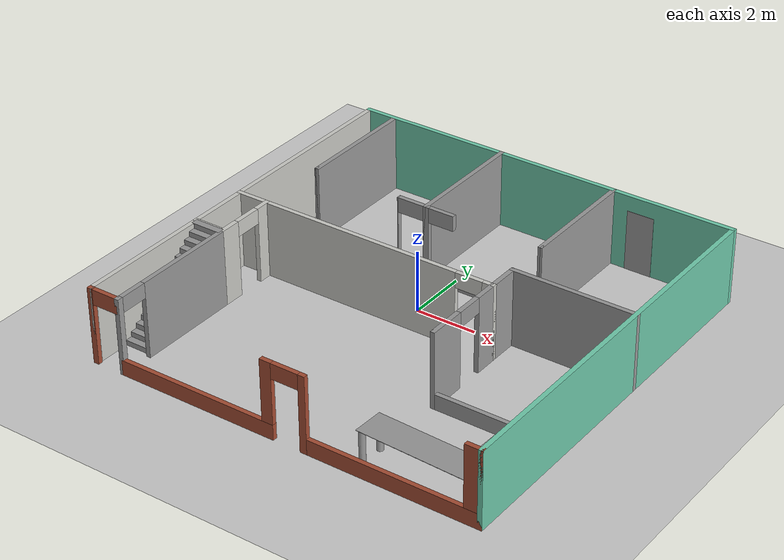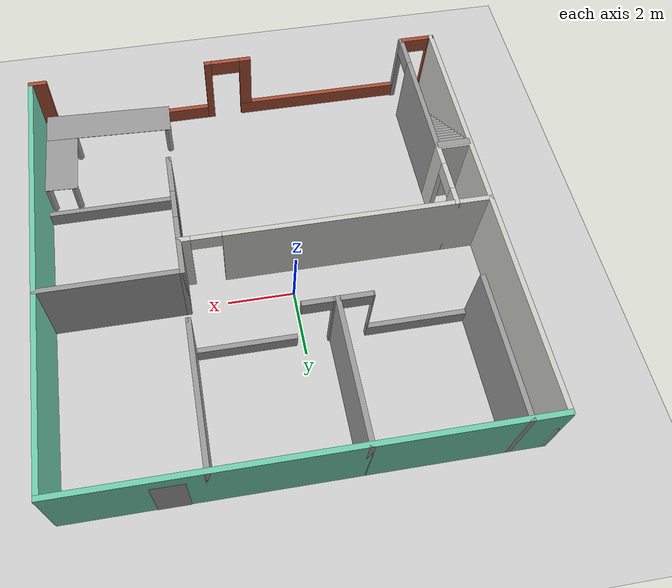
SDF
<sdf version="1.6">
 <world name="default">
  <model name="ground_plane">
   <static>1</static>
   <link name="link">
    <collision name="collision">
     <geometry><plane><normal>0 0 1</normal><size>100 100</size></plane></geometry>
     <surface>
      <contact><collide_bitmask>65535</collide_bitmask></contact>
      <friction><ode><mu>100</mu><mu2>50</mu2></ode></friction>
     </surface>
    </collision>
    <visual name="visual">
     <cast_shadows>0</cast_shadows>
     <geometry><plane><normal>0 0 1</normal><size>100 100</size></plane></geometry>
     <material>
      <script><uri>file://media/materials/scripts/gazebo.material</uri><name>Gazebo/Grey</name></script>
     </material>
    </visual>
   </link>
  </model>
  <model name="HB_greenLabs">
   <pose>0.67281 -0.88547 0 0 -0 0</pose>
   <link name="Door_8">
    <collision name="Door_8_Collision">
     <geometry><box><size>0.9 0.17 2</size></box></geometry>
     <pose>0 0 1 0 -0 0</pose>
    </collision>
    <visual name="Door_8_Visual">
     <pose>0 0 1 0 -0 0</pose>
     <geometry><box><size>0.9 0.17 2</size></box></geometry>
     <material>
      <script><uri>file://media/materials/scripts/gazebo.material</uri><name>Gazebo/Grey</name></script>
     </material>
    </visual>
    <pose>3.5 6.5 0 0 -0 0</pose>
   </link>
   <link name="Stairs_0">
    <visual name="Stairs_0_Visual_0">
     <pose>-6 -5.26467 0.083333 0 -0 -3.14159</pose>
     <geometry><box><size>1 0.226667 0.166667</size></box></geometry>
     <material>
      <script><uri>file://media/materials/scripts/gazebo.material</uri><name>Gazebo/Grey</name></script>
      <ambient>1 1 1 1</ambient>
     </material>
     <meta><layer>0</layer></meta>
    </visual>
    <collision name="Stairs_0_Collision_0">
     <geometry><box><size>1 0.226667 0.166667</size></box></geometry>
     <pose>-6 -5.26467 0.083333 0 -0 -3.14159</pose>
    </collision>
    <visual name="Stairs_0_Visual_1">
     <pose>-6 -5.038 0.25 0 -0 -3.14159</pose>
     <geometry><box><size>1 0.226667 0.166667</size></box></geometry>
     <material>
      <script><uri>file://media/materials/scripts/gazebo.material</uri><name>Gazebo/Grey</name></script>
      <ambient>1 1 1 1</ambient>
     </material>
     <meta><layer>0</layer></meta>
    </visual>
    <collision name="Stairs_0_Collision_1">
     <geometry><box><size>1 0.226667 0.166667</size></box></geometry>
     <pose>-6 -5.038 0.25 0 -0 -3.14159</pose>
    </collision>
    <visual name="Stairs_0_Visual_2">
     <pose>-6 -4.81133 0.416667 0 -0 -3.14159</pose>
     <geometry><box><size>1 0.226667 0.166667</size></box></geometry>
     <material>
      <script><uri>file://media/materials/scripts/gazebo.material</uri><name>Gazebo/Grey</name></script>
      <ambient>1 1 1 1</ambient>
     </material>
     <meta><layer>0</layer></meta>
    </visual>
    <collision name="Stairs_0_Collision_2">
     <geometry><box><size>1 0.226667 0.166667</size></box></geometry>
     <pose>-6 -4.81133 0.416667 0 -0 -3.14159</pose>
    </collision>
    <visual name="Stairs_0_Visual_3">
     <pose>-6 -4.58467 0.583333 0 -0 -3.14159</pose>
     <geometry><box><size>1 0.226667 0.166667</size></box></geometry>
     <material>
      <script><uri>file://media/materials/scripts/gazebo.material</uri><name>Gazebo/Grey</name></script>
      <ambient>1 1 1 1</ambient>
     </material>
     <meta><layer>0</layer></meta>
    </visual>
    <collision name="Stairs_0_Collision_3">
     <geometry><box><size>1 0.226667 0.166667</size></box></geometry>
     <pose>-6 -4.58467 0.583333 0 -0 -3.14159</pose>
    </collision>
    <visual name="Stairs_0_Visual_4">
     <pose>-6 -4.358 0.75 0 -0 -3.14159</pose>
     <geometry><box><size>1 0.226667 0.166667</size></box></geometry>
     <material>
      <script><uri>file://media/materials/scripts/gazebo.material</uri><name>Gazebo/Grey</name></script>
      <ambient>1 1 1 1</ambient>
     </material>
     <meta><layer>0</layer></meta>
    </visual>
    <collision name="Stairs_0_Collision_4">
     <geometry><box><size>1 0.226667 0.166667</size></box></geometry>
     <pose>-6 -4.358 0.75 0 -0 -3.14159</pose>
    </collision>
    <visual name="Stairs_0_Visual_5">
     <pose>-6 -4.13133 0.916667 0 -0 -3.14159</pose>
     <geometry><box><size>1 0.226667 0.166667</size></box></geometry>
     <material>
      <script><uri>file://media/materials/scripts/gazebo.material</uri><name>Gazebo/Grey</name></script>
      <ambient>1 1 1 1</ambient>
     </material>
     <meta><layer>0</layer></meta>
    </visual>
    <collision name="Stairs_0_Collision_5">
     <geometry><box><size>1 0.226667 0.166667</size></box></geometry>
     <pose>-6 -4.13133 0.916667 0 -0 -3.14159</pose>
    </collision>
    <visual name="Stairs_0_Visual_6">
     <pose>-6 -3.90467 1.08333 0 -0 -3.14159</pose>
     <geometry><box><size>1 0.226667 0.166667</size></box></geometry>
     <material>
      <script><uri>file://media/materials/scripts/gazebo.material</uri><name>Gazebo/Grey</name></script>
      <ambient>1 1 1 1</ambient>
     </material>
     <meta><layer>0</layer></meta>
    </visual>
    <collision name="Stairs_0_Collision_6">
     <geometry><box><size>1 0.226667 0.166667</size></box></geometry>
     <pose>-6 -3.90467 1.08333 0 -0 -3.14159</pose>
    </collision>
    <visual name="Stairs_0_Visual_7">
     <pose>-6 -3.678 1.25 0 -0 -3.14159</pose>
     <geometry><box><size>1 0.226667 0.166667</size></box></geometry>
     <material>
      <script><uri>file://media/materials/scripts/gazebo.material</uri><name>Gazebo/Grey</name></script>
      <ambient>1 1 1 1</ambient>
     </material>
     <meta><layer>0</layer></meta>
    </visual>
    <collision name="Stairs_0_Collision_7">
     <geometry><box><size>1 0.226667 0.166667</size></box></geometry>
     <pose>-6 -3.678 1.25 0 -0 -3.14159</pose>
    </collision>
    <visual name="Stairs_0_Visual_8">
     <pose>-6 -3.45133 1.41667 0 -0 -3.14159</pose>
     <geometry><box><size>1 0.226667 0.166667</size></box></geometry>
     <material>
      <script><uri>file://media/materials/scripts/gazebo.material</uri><name>Gazebo/Grey</name></script>
      <ambient>1 1 1 1</ambient>
     </material>
     <meta><layer>0</layer></meta>
    </visual>
    <collision name="Stairs_0_Collision_8">
     <geometry><box><size>1 0.226667 0.166667</size></box></geometry>
     <pose>-6 -3.45133 1.41667 0 -0 -3.14159</pose>
    </collision>
    <visual name="Stairs_0_Visual_9">
     <pose>-6 -3.22467 1.58333 0 -0 -3.14159</pose>
     <geometry><box><size>1 0.226667 0.166667</size></box></geometry>
     <material>
      <script><uri>file://media/materials/scripts/gazebo.material</uri><name>Gazebo/Grey</name></script>
      <ambient>1 1 1 1</ambient>
     </material>
     <meta><layer>0</layer></meta>
    </visual>
    <collision name="Stairs_0_Collision_9">
     <geometry><box><size>1 0.226667 0.166667</size></box></geometry>
     <pose>-6 -3.22467 1.58333 0 -0 -3.14159</pose>
    </collision>
    <visual name="Stairs_0_Visual_10">
     <pose>-6 -2.998 1.75 0 -0 -3.14159</pose>
     <geometry><box><size>1 0.226667 0.166667</size></box></geometry>
     <material>
      <script><uri>file://media/materials/scripts/gazebo.material</uri><name>Gazebo/Grey</name></script>
      <ambient>1 1 1 1</ambient>
     </material>
     <meta><layer>0</layer></meta>
    </visual>
    <collision name="Stairs_0_Collision_10">
     <geometry><box><size>1 0.226667 0.166667</size></box></geometry>
     <pose>-6 -2.998 1.75 0 -0 -3.14159</pose>
    </collision>
    <visual name="Stairs_0_Visual_11">
     <pose>-6 -2.77133 1.91667 0 -0 -3.14159</pose>
     <geometry><box><size>1 0.226667 0.166667</size></box></geometry>
     <material>
      <script><uri>file://media/materials/scripts/gazebo.material</uri><name>Gazebo/Grey</name></script>
      <ambient>1 1 1 1</ambient>
     </material>
     <meta><layer>0</layer></meta>
    </visual>
    <collision name="Stairs_0_Collision_11">
     <geometry><box><size>1 0.226667 0.166667</size></box></geometry>
     <pose>-6 -2.77133 1.91667 0 -0 -3.14159</pose>
    </collision>
    <visual name="Stairs_0_Visual_12">
     <pose>-6 -2.54467 2.08333 0 -0 -3.14159</pose>
     <geometry><box><size>1 0.226667 0.166667</size></box></geometry>
     <material>
      <script><uri>file://media/materials/scripts/gazebo.material</uri><name>Gazebo/Grey</name></script>
      <ambient>1 1 1 1</ambient>
     </material>
     <meta><layer>0</layer></meta>
    </visual>
    <collision name="Stairs_0_Collision_12">
     <geometry><box><size>1 0.226667 0.166667</size></box></geometry>
     <pose>-6 -2.54467 2.08333 0 -0 -3.14159</pose>
    </collision>
    <visual name="Stairs_0_Visual_13">
     <pose>-6 -2.318 2.25 0 -0 -3.14159</pose>
     <geometry><box><size>1 0.226667 0.166667</size></box></geometry>
     <material>
      <script><uri>file://media/materials/scripts/gazebo.material</uri><name>Gazebo/Grey</name></script>
      <ambient>1 1 1 1</ambient>
     </material>
     <meta><layer>0</layer></meta>
    </visual>
    <collision name="Stairs_0_Collision_13">
     <geometry><box><size>1 0.226667 0.166667</size></box></geometry>
     <pose>-6 -2.318 2.25 0 -0 -3.14159</pose>
    </collision>
    <visual name="Stairs_0_Visual_14">
     <pose>-6 -2.09133 2.41667 0 -0 -3.14159</pose>
     <geometry><box><size>1 0.226667 0.166667</size></box></geometry>
     <material>
      <script><uri>file://media/materials/scripts/gazebo.material</uri><name>Gazebo/Grey</name></script>
      <ambient>1 1 1 1</ambient>
     </material>
     <meta><layer>0</layer></meta>
    </visual>
    <collision name="Stairs_0_Collision_14">
     <geometry><box><size>1 0.226667 0.166667</size></box></geometry>
     <pose>-6 -2.09133 2.41667 0 -0 -3.14159</pose>
    </collision>
   </link>
   <link name="Wall_11">
    <pose>0 -6.5 0 0 -0 0</pose>
    <visual name="Wall_11_Visual_0">
     <pose>-6.48238 0 1.25 0 -0 0</pose>
     <geometry><box><size>0.185236 0.15 2.5</size></box></geometry>
     <material>
      <script><uri>file://media/materials/scripts/gazebo.material</uri><name>Gazebo/Bricks</name></script>
      <ambient>1 1 1 1</ambient>
     </material>
     <meta><layer>0</layer></meta>
    </visual>
    <collision name="Wall_11_Collision_0">
     <geometry><box><size>0.185236 0.15 2.5</size></box></geometry>
     <pose>-6.48238 0 1.25 0 -0 0</pose>
    </collision>
    <visual name="Wall_11_Visual_1">
     <pose>-2.80803 0 0.25 0 -0 0</pose>
     <geometry><box><size>5.36346 0.15 0.5</size></box></geometry>
     <material>
      <script><uri>file://media/materials/scripts/gazebo.material</uri><name>Gazebo/Bricks</name></script>
      <ambient>1 1 1 1</ambient>
     </material>
     <meta><layer>0</layer></meta>
    </visual>
    <collision name="Wall_11_Collision_1">
     <geometry><box><size>5.36346 0.15 0.5</size></box></geometry>
     <pose>-2.80803 0 0.25 0 -0 0</pose>
    </collision>
    <visual name="Wall_11_Visual_2">
     <pose>0.88685 0 1.25 0 -0 0</pose>
     <geometry><box><size>0.226301 0.15 2.5</size></box></geometry>
     <material>
      <script><uri>file://media/materials/scripts/gazebo.material</uri><name>Gazebo/Bricks</name></script>
      <ambient>1 1 1 1</ambient>
     </material>
     <meta><layer>0</layer></meta>
    </visual>
    <collision name="Wall_11_Collision_2">
     <geometry><box><size>0.226301 0.15 2.5</size></box></geometry>
     <pose>0.88685 0 1.25 0 -0 0</pose>
    </collision>
    <visual name="Wall_11_Visual_3">
     <pose>3.7875 0 0.25 0 -0 0</pose>
     <geometry><box><size>5.575 0.15 0.5</size></box></geometry>
     <material>
      <script><uri>file://media/materials/scripts/gazebo.material</uri><name>Gazebo/Bricks</name></script>
      <ambient>1 1 1 1</ambient>
     </material>
     <meta><layer>0</layer></meta>
    </visual>
    <collision name="Wall_11_Collision_3">
     <geometry><box><size>5.575 0.15 0.5</size></box></geometry>
     <pose>3.7875 0 0.25 0 -0 0</pose>
    </collision>
    <visual name="Wall_11_Visual_4">
     <pose>-0.31315 0 1.5 0 -0 0</pose>
     <geometry><box><size>0.373699 0.15 2</size></box></geometry>
     <material>
      <script><uri>file://media/materials/scripts/gazebo.material</uri><name>Gazebo/Bricks</name></script>
      <ambient>1 1 1 1</ambient>
     </material>
     <meta><layer>0</layer></meta>
    </visual>
    <collision name="Wall_11_Collision_4">
     <geometry><box><size>0.373699 0.15 2</size></box></geometry>
     <pose>-0.31315 0 1.5 0 -0 0</pose>
    </collision>
    <visual name="Wall_11_Visual_5">
     <pose>-0.31315 0 1.5 0 -0 0</pose>
     <geometry><box><size>0.373699 0.15 2</size></box></geometry>
     <material>
      <script><uri>file://media/materials/scripts/gazebo.material</uri><name>Gazebo/Bricks</name></script>
      <ambient>1 1 1 1</ambient>
     </material>
     <meta><layer>0</layer></meta>
    </visual>
    <collision name="Wall_11_Collision_5">
     <geometry><box><size>0.373699 0.15 2</size></box></geometry>
     <pose>-0.31315 0 1.5 0 -0 0</pose>
    </collision>
    <visual name="Wall_11_Visual_6">
     <pose>6.2875 0 1.5 0 -0 0</pose>
     <geometry><box><size>0.575 0.15 2</size></box></geometry>
     <material>
      <script><uri>file://media/materials/scripts/gazebo.material</uri><name>Gazebo/Bricks</name></script>
      <ambient>1 1 1 1</ambient>
     </material>
     <meta><layer>0</layer></meta>
    </visual>
    <collision name="Wall_11_Collision_6">
     <geometry><box><size>0.575 0.15 2</size></box></geometry>
     <pose>6.2875 0 1.5 0 -0 0</pose>
    </collision>
    <visual name="Wall_11_Visual_7">
     <pose>-5.94488 0 2.25 0 -0 0</pose>
     <geometry><box><size>0.889764 0.15 0.5</size></box></geometry>
     <material>
      <script><uri>file://media/materials/scripts/gazebo.material</uri><name>Gazebo/Bricks</name></script>
      <ambient>1 1 1 1</ambient>
     </material>
     <meta><layer>0</layer></meta>
    </visual>
    <collision name="Wall_11_Collision_7">
     <geometry><box><size>0.889764 0.15 0.5</size></box></geometry>
     <pose>-5.94488 0 2.25 0 -0 0</pose>
    </collision>
    <visual name="Wall_11_Visual_8">
     <pose>0.323699 0 2.25 0 -0 0</pose>
     <geometry><box><size>0.9 0.15 0.5</size></box></geometry>
     <material>
      <script><uri>file://media/materials/scripts/gazebo.material</uri><name>Gazebo/Bricks</name></script>
      <ambient>1 1 1 1</ambient>
     </material>
     <meta><layer>0</layer></meta>
    </visual>
    <collision name="Wall_11_Collision_8">
     <geometry><box><size>0.9 0.15 0.5</size></box></geometry>
     <pose>0.323699 0 2.25 0 -0 0</pose>
    </collision>
    <visual name="Wall_11_Visual_9">
     <pose>0.323699 0 2.25 0 -0 0</pose>
     <geometry><box><size>0.9 0.15 0.5</size></box></geometry>
     <material>
      <script><uri>file://media/materials/scripts/gazebo.material</uri><name>Gazebo/Bricks</name></script>
      <ambient>1 1 1 1</ambient>
     </material>
     <meta><layer>0</layer></meta>
    </visual>
    <collision name="Wall_11_Collision_9">
     <geometry><box><size>0.9 0.15 0.5</size></box></geometry>
     <pose>0.323699 0 2.25 0 -0 0</pose>
    </collision>
   </link>
   <link name="Wall_12">
    <collision name="Wall_12_Collision">
     <geometry><box><size>13.15 0.15 2.5</size></box></geometry>
     <pose>0 0 1.25 0 -0 0</pose>
    </collision>
    <visual name="Wall_12_Visual">
     <pose>0 0 1.25 0 -0 0</pose>
     <geometry><box><size>13.15 0.15 2.5</size></box></geometry>
     <material>
      <script><uri>file://media/materials/scripts/gazebo.material</uri><name>Gazebo/Grey</name></script>
      <ambient>0.435294 0.796078 0.67451 1</ambient>
     </material>
     <meta><layer>0</layer></meta>
    </visual>
    <pose>6.5 0 0 0 -0 1.5708</pose>
   </link>
   <link name="Wall_14">
    <collision name="Wall_14_Collision">
     <geometry><box><size>13.15 0.15 2.5</size></box></geometry>
     <pose>0 0 1.25 0 -0 0</pose>
    </collision>
    <visual name="Wall_14_Visual">
     <pose>0 0 1.25 0 -0 0</pose>
     <geometry><box><size>13.15 0.15 2.5</size></box></geometry>
     <material>
      <script><uri>file://media/materials/scripts/gazebo.material</uri><name>Gazebo/CeilingTiled</name></script>
      <ambient>0.435294 0.796078 0.67451 1</ambient>
     </material>
     <meta><layer>0</layer></meta>
    </visual>
    <pose>-6.5 0 0 0 -0 1.5708</pose>
   </link>
   <link name="Wall_16">
    <collision name="Wall_16_Collision">
     <geometry><box><size>13.15 0.15 2.5</size></box></geometry>
     <pose>0 0 1.25 0 -0 0</pose>
    </collision>
    <visual name="Wall_16_Visual">
     <pose>0 0 1.25 0 -0 0</pose>
     <geometry><box><size>13.15 0.15 2.5</size></box></geometry>
     <material>
      <script><uri>file://media/materials/scripts/gazebo.material</uri><name>Gazebo/Grey</name></script>
      <ambient>0.435294 0.796078 0.67451 1</ambient>
     </material>
     <meta><layer>0</layer></meta>
    </visual>
    <pose>0 6.5 0 0 -0 0</pose>
   </link>
   <link name="Wall_18">
    <pose>-5.5 -4.25 0 0 -0 1.5708</pose>
    <visual name="Wall_18_Visual_0">
     <pose>-2.23145 0 1.25 0 -0 0</pose>
     <geometry><box><size>0.187101 0.15 2.5</size></box></geometry>
     <material>
      <script><uri>file://media/materials/scripts/gazebo.material</uri><name>Gazebo/Grey</name></script>
      <ambient>1 1 1 1</ambient>
     </material>
     <meta><layer>0</layer></meta>
    </visual>
    <collision name="Wall_18_Collision_0">
     <geometry><box><size>0.187101 0.15 2.5</size></box></geometry>
     <pose>-2.23145 0 1.25 0 -0 0</pose>
    </collision>
    <visual name="Wall_18_Visual_1">
     <pose>0.54355 0 1.25 0 -0 0</pose>
     <geometry><box><size>3.5629 0.15 2.5</size></box></geometry>
     <material>
      <script><uri>file://media/materials/scripts/gazebo.material</uri><name>Gazebo/Grey</name></script>
      <ambient>1 1 1 1</ambient>
     </material>
     <meta><layer>0</layer></meta>
    </visual>
    <collision name="Wall_18_Collision_1">
     <geometry><box><size>3.5629 0.15 2.5</size></box></geometry>
     <pose>0.54355 0 1.25 0 -0 0</pose>
    </collision>
    <visual name="Wall_18_Visual_2">
     <pose>-1.6879 0 2.25 0 -0 0</pose>
     <geometry><box><size>0.9 0.15 0.5</size></box></geometry>
     <material>
      <script><uri>file://media/materials/scripts/gazebo.material</uri><name>Gazebo/Grey</name></script>
      <ambient>1 1 1 1</ambient>
     </material>
     <meta><layer>0</layer></meta>
    </visual>
    <collision name="Wall_18_Collision_2">
     <geometry><box><size>0.9 0.15 0.5</size></box></geometry>
     <pose>-1.6879 0 2.25 0 -0 0</pose>
    </collision>
   </link>
   <link name="Wall_20">
    <collision name="Wall_20_Collision">
     <geometry><box><size>1.15 0.15 2.5</size></box></geometry>
     <pose>0 0 1.25 0 -0 0</pose>
    </collision>
    <visual name="Wall_20_Visual">
     <pose>0 0 1.25 0 -0 0</pose>
     <geometry><box><size>1.15 0.15 2.5</size></box></geometry>
     <material>
      <script><uri>file://media/materials/scripts/gazebo.material</uri><name>Gazebo/CeilingTiled</name></script>
      <ambient>1 1 1 1</ambient>
     </material>
     <meta><layer>0</layer></meta>
    </visual>
    <pose>-6 -2 0 0 -0 0</pose>
   </link>
   <link name="Wall_22">
    <pose>-2 0 0 0 -0 0</pose>
    <visual name="Wall_22_Visual_0">
     <pose>-0.647075 0 1.25 0 -0 0</pose>
     <geometry><box><size>7.85585 0.15 2.5</size></box></geometry>
     <material>
      <script><uri>file://media/materials/scripts/gazebo.material</uri><name>Gazebo/CeilingTiled</name></script>
      <ambient>1 1 1 1</ambient>
     </material>
     <meta><layer>0</layer></meta>
    </visual>
    <collision name="Wall_22_Collision_0">
     <geometry><box><size>7.85585 0.15 2.5</size></box></geometry>
     <pose>-0.647075 0 1.25 0 -0 0</pose>
    </collision>
    <visual name="Wall_22_Visual_1">
     <pose>4.37793 0 1.25 0 -0 0</pose>
     <geometry><box><size>0.39415 0.15 2.5</size></box></geometry>
     <material>
      <script><uri>file://media/materials/scripts/gazebo.material</uri><name>Gazebo/CeilingTiled</name></script>
      <ambient>1 1 1 1</ambient>
     </material>
     <meta><layer>0</layer></meta>
    </visual>
    <collision name="Wall_22_Collision_1">
     <geometry><box><size>0.39415 0.15 2.5</size></box></geometry>
     <pose>4.37793 0 1.25 0 -0 0</pose>
    </collision>
    <visual name="Wall_22_Visual_2">
     <pose>3.73085 0 2.25 0 -0 0</pose>
     <geometry><box><size>0.9 0.15 0.5</size></box></geometry>
     <material>
      <script><uri>file://media/materials/scripts/gazebo.material</uri><name>Gazebo/CeilingTiled</name></script>
      <ambient>1 1 1 1</ambient>
     </material>
     <meta><layer>0</layer></meta>
    </visual>
    <collision name="Wall_22_Collision_2">
     <geometry><box><size>0.9 0.15 0.5</size></box></geometry>
     <pose>3.73085 0 2.25 0 -0 0</pose>
    </collision>
   </link>
   <link name="Wall_26">
    <pose>-5.5 -1 0 0 -0 1.5708</pose>
    <visual name="Wall_26_Visual_0">
     <pose>-0.734323 0 1.25 0 -0 0</pose>
     <geometry><box><size>0.681355 0.15 2.5</size></box></geometry>
     <material>
      <script><uri>file://media/materials/scripts/gazebo.material</uri><name>Gazebo/CeilingTiled</name></script>
      <ambient>1 1 1 1</ambient>
     </material>
     <meta><layer>0</layer></meta>
    </visual>
    <collision name="Wall_26_Collision_0">
     <geometry><box><size>0.681355 0.15 2.5</size></box></geometry>
     <pose>-0.734323 0 1.25 0 -0 0</pose>
    </collision>
    <visual name="Wall_26_Visual_1">
     <pose>0.790677 0 1.25 0 -0 0</pose>
     <geometry><box><size>0.568645 0.15 2.5</size></box></geometry>
     <material>
      <script><uri>file://media/materials/scripts/gazebo.material</uri><name>Gazebo/CeilingTiled</name></script>
      <ambient>1 1 1 1</ambient>
     </material>
     <meta><layer>0</layer></meta>
    </visual>
    <collision name="Wall_26_Collision_1">
     <geometry><box><size>0.568645 0.15 2.5</size></box></geometry>
     <pose>0.790677 0 1.25 0 -0 0</pose>
    </collision>
    <visual name="Wall_26_Visual_2">
     <pose>0.056355 0 2.25 0 -0 0</pose>
     <geometry><box><size>0.9 0.15 0.5</size></box></geometry>
     <material>
      <script><uri>file://media/materials/scripts/gazebo.material</uri><name>Gazebo/CeilingTiled</name></script>
      <ambient>1 1 1 1</ambient>
     </material>
     <meta><layer>0</layer></meta>
    </visual>
    <collision name="Wall_26_Collision_2">
     <geometry><box><size>0.9 0.15 0.5</size></box></geometry>
     <pose>0.056355 0 2.25 0 -0 0</pose>
    </collision>
   </link>
   <link name="Wall_28">
    <pose>2.5 -1.425 0 0 0 -1.5708</pose>
    <visual name="Wall_28_Visual_0">
     <pose>-1.07292 0 1.25 0 -0 0</pose>
     <geometry><box><size>0.854154 0.15 2.5</size></box></geometry>
     <material>
      <script><uri>file://media/materials/scripts/gazebo.material</uri><name>Gazebo/Grey</name></script>
      <ambient>1 1 1 1</ambient>
     </material>
     <meta><layer>0</layer></meta>
    </visual>
    <collision name="Wall_28_Collision_0">
     <geometry><box><size>0.854154 0.15 2.5</size></box></geometry>
     <pose>-1.07292 0 1.25 0 -0 0</pose>
    </collision>
    <visual name="Wall_28_Visual_1">
     <pose>0.877077 0 1.25 0 -0 0</pose>
     <geometry><box><size>1.24585 0.15 2.5</size></box></geometry>
     <material>
      <script><uri>file://media/materials/scripts/gazebo.material</uri><name>Gazebo/Grey</name></script>
      <ambient>1 1 1 1</ambient>
     </material>
     <meta><layer>0</layer></meta>
    </visual>
    <collision name="Wall_28_Collision_1">
     <geometry><box><size>1.24585 0.15 2.5</size></box></geometry>
     <pose>0.877077 0 1.25 0 -0 0</pose>
    </collision>
    <visual name="Wall_28_Visual_2">
     <pose>-0.195846 0 2.25 0 -0 0</pose>
     <geometry><box><size>0.9 0.15 0.5</size></box></geometry>
     <material>
      <script><uri>file://media/materials/scripts/gazebo.material</uri><name>Gazebo/Grey</name></script>
      <ambient>1 1 1 1</ambient>
     </material>
     <meta><layer>0</layer></meta>
    </visual>
    <collision name="Wall_28_Collision_2">
     <geometry><box><size>0.9 0.15 0.5</size></box></geometry>
     <pose>-0.195846 0 2.25 0 -0 0</pose>
    </collision>
   </link>
   <link name="Wall_30">
    <pose>4.425 -2.85 0 0 -0 0</pose>
    <visual name="Wall_30_Visual_0">
     <pose>-1.9625 0 1.25 0 -0 0</pose>
     <geometry><box><size>0.075 0.15 2.5</size></box></geometry>
     <material>
      <script><uri>file://media/materials/scripts/gazebo.material</uri><name>Gazebo/Grey</name></script>
      <ambient>1 1 1 1</ambient>
     </material>
     <meta><layer>0</layer></meta>
    </visual>
    <collision name="Wall_30_Collision_0">
     <geometry><box><size>0.075 0.15 2.5</size></box></geometry>
     <pose>-1.9625 0 1.25 0 -0 0</pose>
    </collision>
    <visual name="Wall_30_Visual_1">
     <pose>0.0375 0 0.25 0 -0 0</pose>
     <geometry><box><size>3.925 0.15 0.5</size></box></geometry>
     <material>
      <script><uri>file://media/materials/scripts/gazebo.material</uri><name>Gazebo/Grey</name></script>
      <ambient>1 1 1 1</ambient>
     </material>
     <meta><layer>0</layer></meta>
    </visual>
    <collision name="Wall_30_Collision_1">
     <geometry><box><size>3.925 0.15 0.5</size></box></geometry>
     <pose>0.0375 0 0.25 0 -0 0</pose>
    </collision>
   </link>
   <link name="Wall_32">
    <collision name="Wall_32_Collision">
     <geometry><box><size>1.15 0.15 2.5</size></box></geometry>
     <pose>0 0 1.25 0 -0 0</pose>
    </collision>
    <visual name="Wall_32_Visual">
     <pose>0 0 1.25 0 -0 0</pose>
     <geometry><box><size>1.15 0.15 2.5</size></box></geometry>
     <material>
      <script><uri>file://media/materials/scripts/gazebo.material</uri><name>Gazebo/Grey</name></script>
      <ambient>1 1 1 1</ambient>
     </material>
     <meta><layer>0</layer></meta>
    </visual>
    <pose>2.5 0.5 0 0 -0 1.5708</pose>
   </link>
   <link name="Wall_33">
    <collision name="Wall_33_Collision">
     <geometry><box><size>4.15 0.15 2.5</size></box></geometry>
     <pose>0 0 1.25 0 -0 0</pose>
    </collision>
    <visual name="Wall_33_Visual">
     <pose>0 0 1.25 0 -0 0</pose>
     <geometry><box><size>4.15 0.15 2.5</size></box></geometry>
     <material>
      <script><uri>file://media/materials/scripts/gazebo.material</uri><name>Gazebo/Grey</name></script>
      <ambient>1 1 1 1</ambient>
     </material>
     <meta><layer>0</layer></meta>
    </visual>
    <pose>4.5 1 0 0 -0 0</pose>
   </link>
   <link name="Wall_35">
    <collision name="Wall_35_Collision">
     <geometry><box><size>4.15 0.15 2.5</size></box></geometry>
     <pose>0 0 1.25 0 -0 0</pose>
    </collision>
    <visual name="Wall_35_Visual">
     <pose>0 0 1.25 0 -0 0</pose>
     <geometry><box><size>4.15 0.15 2.5</size></box></geometry>
     <material>
      <script><uri>file://media/materials/scripts/gazebo.material</uri><name>Gazebo/Grey</name></script>
      <ambient>1 1 1 1</ambient>
     </material>
     <meta><layer>0</layer></meta>
    </visual>
    <pose>-5.5 4.5 0 0 0 -1.5708</pose>
   </link>
   <link name="Wall_37">
    <pose>-1.5 2.5 0 0 -0 0</pose>
    <visual name="Wall_37_Visual_0">
     <pose>-4.0375 0 1.25 0 -0 0</pose>
     <geometry><box><size>0.075 0.15 2.5</size></box></geometry>
     <material>
      <script><uri>file://media/materials/scripts/gazebo.material</uri><name>Gazebo/Grey</name></script>
      <ambient>1 1 1 1</ambient>
     </material>
     <meta><layer>0</layer></meta>
    </visual>
    <collision name="Wall_37_Collision_0">
     <geometry><box><size>0.075 0.15 2.5</size></box></geometry>
     <pose>-4.0375 0 1.25 0 -0 0</pose>
    </collision>
    <visual name="Wall_37_Visual_1">
     <pose>0.033157 0 1.25 0 -0 0</pose>
     <geometry><box><size>0.196044 0.15 2.5</size></box></geometry>
     <material>
      <script><uri>file://media/materials/scripts/gazebo.material</uri><name>Gazebo/Grey</name></script>
      <ambient>1 1 1 1</ambient>
     </material>
     <meta><layer>0</layer></meta>
    </visual>
    <collision name="Wall_37_Collision_1">
     <geometry><box><size>0.196044 0.15 2.5</size></box></geometry>
     <pose>0.033157 0 1.25 0 -0 0</pose>
    </collision>
    <visual name="Wall_37_Visual_2">
     <pose>2.55309 0 0.25 0 -0 0</pose>
     <geometry><box><size>3.04382 0.15 0.5</size></box></geometry>
     <material>
      <script><uri>file://media/materials/scripts/gazebo.material</uri><name>Gazebo/Grey</name></script>
      <ambient>1 1 1 1</ambient>
     </material>
     <meta><layer>0</layer></meta>
    </visual>
    <collision name="Wall_37_Collision_2">
     <geometry><box><size>3.04382 0.15 0.5</size></box></geometry>
     <pose>2.55309 0 0.25 0 -0 0</pose>
    </collision>
    <visual name="Wall_37_Visual_3">
     <pose>-2.48243 0 0.25 0 -0 0</pose>
     <geometry><box><size>3.03514 0.15 0.5</size></box></geometry>
     <material>
      <script><uri>file://media/materials/scripts/gazebo.material</uri><name>Gazebo/Grey</name></script>
      <ambient>1 1 1 1</ambient>
     </material>
     <meta><layer>0</layer></meta>
    </visual>
    <collision name="Wall_37_Collision_3">
     <geometry><box><size>3.03514 0.15 0.5</size></box></geometry>
     <pose>-2.48243 0 0.25 0 -0 0</pose>
    </collision>
    <visual name="Wall_37_Visual_4">
     <pose>4.0375 0 1.5 0 -0 0</pose>
     <geometry><box><size>0.075 0.15 2</size></box></geometry>
     <material>
      <script><uri>file://media/materials/scripts/gazebo.material</uri><name>Gazebo/Grey</name></script>
      <ambient>1 1 1 1</ambient>
     </material>
     <meta><layer>0</layer></meta>
    </visual>
    <collision name="Wall_37_Collision_4">
     <geometry><box><size>0.075 0.15 2</size></box></geometry>
     <pose>4.0375 0 1.5 0 -0 0</pose>
    </collision>
    <visual name="Wall_37_Visual_5">
     <pose>-0.982432 0 1.5 0 -0 0</pose>
     <geometry><box><size>0.035136 0.15 2</size></box></geometry>
     <material>
      <script><uri>file://media/materials/scripts/gazebo.material</uri><name>Gazebo/Grey</name></script>
      <ambient>1 1 1 1</ambient>
     </material>
     <meta><layer>0</layer></meta>
    </visual>
    <collision name="Wall_37_Collision_5">
     <geometry><box><size>0.035136 0.15 2</size></box></geometry>
     <pose>-0.982432 0 1.5 0 -0 0</pose>
    </collision>
    <visual name="Wall_37_Visual_6">
     <pose>-0.982432 0 1.5 0 -0 0</pose>
     <geometry><box><size>0.035136 0.15 2</size></box></geometry>
     <material>
      <script><uri>file://media/materials/scripts/gazebo.material</uri><name>Gazebo/Grey</name></script>
      <ambient>1 1 1 1</ambient>
     </material>
     <meta><layer>0</layer></meta>
    </visual>
    <collision name="Wall_37_Collision_6">
     <geometry><box><size>0.035136 0.15 2</size></box></geometry>
     <pose>-0.982432 0 1.5 0 -0 0</pose>
    </collision>
    <visual name="Wall_37_Visual_7">
     <pose>0.56559 0 2.25 0 -0 0</pose>
     <geometry><box><size>0.868821 0.15 0.5</size></box></geometry>
     <material>
      <script><uri>file://media/materials/scripts/gazebo.material</uri><name>Gazebo/Grey</name></script>
      <ambient>1 1 1 1</ambient>
     </material>
     <meta><layer>0</layer></meta>
    </visual>
    <collision name="Wall_37_Collision_7">
     <geometry><box><size>0.868821 0.15 0.5</size></box></geometry>
     <pose>0.56559 0 2.25 0 -0 0</pose>
    </collision>
    <visual name="Wall_37_Visual_8">
     <pose>-0.514864 0 2.25 0 -0 0</pose>
     <geometry><box><size>0.9 0.15 0.5</size></box></geometry>
     <material>
      <script><uri>file://media/materials/scripts/gazebo.material</uri><name>Gazebo/Grey</name></script>
      <ambient>1 1 1 1</ambient>
     </material>
     <meta><layer>0</layer></meta>
    </visual>
    <collision name="Wall_37_Collision_8">
     <geometry><box><size>0.9 0.15 0.5</size></box></geometry>
     <pose>-0.514864 0 2.25 0 -0 0</pose>
    </collision>
    <visual name="Wall_37_Visual_9">
     <pose>-0.514864 0 2.25 0 -0 0</pose>
     <geometry><box><size>0.9 0.15 0.5</size></box></geometry>
     <material>
      <script><uri>file://media/materials/scripts/gazebo.material</uri><name>Gazebo/Grey</name></script>
      <ambient>1 1 1 1</ambient>
     </material>
     <meta><layer>0</layer></meta>
    </visual>
    <collision name="Wall_37_Collision_9">
     <geometry><box><size>0.9 0.15 0.5</size></box></geometry>
     <pose>-0.514864 0 2.25 0 -0 0</pose>
    </collision>
   </link>
   <link name="Wall_39">
    <collision name="Wall_39_Collision">
     <geometry><box><size>4.15 0.15 2.5</size></box></geometry>
     <pose>0 0 1.25 0 -0 0</pose>
    </collision>
    <visual name="Wall_39_Visual">
     <pose>0 0 1.25 0 -0 0</pose>
     <geometry><box><size>4.15 0.15 2.5</size></box></geometry>
     <material>
      <script><uri>file://media/materials/scripts/gazebo.material</uri><name>Gazebo/Grey</name></script>
      <ambient>1 1 1 1</ambient>
     </material>
     <meta><layer>0</layer></meta>
    </visual>
    <pose>-1.5 4.5 0 0 -0 1.5708</pose>
   </link>
   <link name="Wall_41">
    <collision name="Wall_41_Collision">
     <geometry><box><size>4.15 0.15 2.5</size></box></geometry>
     <pose>0 0 1.25 0 -0 0</pose>
    </collision>
    <visual name="Wall_41_Visual">
     <pose>0 0 1.25 0 -0 0</pose>
     <geometry><box><size>4.15 0.15 2.5</size></box></geometry>
     <material>
      <script><uri>file://media/materials/scripts/gazebo.material</uri><name>Gazebo/Grey</name></script>
      <ambient>1 1 1 1</ambient>
     </material>
     <meta><layer>0</layer></meta>
    </visual>
    <pose>2.5 4.5 0 0 -0 1.5708</pose>
   </link>
   <static>1</static>
  </model>
  <model name="mytable">
   <link name="link_0">
    <pose>-0.78753 0.46744 0.418 0 -0 0</pose>
    <inertial>
     <mass>1</mass>
     <inertia>
      <ixx>0.166667</ixx>
      <ixy>0</ixy>
      <ixz>0</ixz>
      <iyy>0.166667</iyy>
      <iyz>0</iyz>
      <izz>0.166667</izz>
     </inertia>
    </inertial>
    <visual name="visual">
     <geometry><box><size>1 4 0.01</size></box></geometry>
     <material>
      <lighting>1</lighting>
      <script><uri>file://media/materials/scripts/gazebo.material</uri><name>Gazebo/Grey</name></script>
      <shader type="pixel"><normal_map>__default__</normal_map></shader>
      <ambient>0.3 0.3 0.3 1</ambient>
      <diffuse>0.7 0.7 0.7 1</diffuse>
      <specular>0.01 0.01 0.01 1</specular>
      <emissive>0 0 0 1</emissive>
     </material>
    </visual>
    <collision name="collision">
     <geometry><box><size>1 4 0.01</size></box></geometry>
     <surface>
      <friction>
       <ode><mu>1</mu><mu2>1</mu2><fdir1>0 0 0</fdir1><slip1>0</slip1><slip2>0</slip2></ode>
       <torsional>
        <coefficient>1</coefficient>
        <patch_radius>0</patch_radius>
        <surface_radius>0</surface_radius>
        <use_patch_radius>1</use_patch_radius>
        <ode><slip>0</slip></ode>
       </torsional>
      </friction>
      <bounce><restitution_coefficient>0</restitution_coefficient><threshold>1e+06</threshold></bounce>
      <contact>
       <collide_without_contact>0</collide_without_contact>
       <collide_without_contact_bitmask>1</collide_without_contact_bitmask>
       <collide_bitmask>1</collide_bitmask>
       <ode>
        <soft_cfm>0</soft_cfm>
        <soft_erp>0.2</soft_erp>
        <kp>1e+13</kp>
        <kd>1</kd>
        <max_vel>0.01</max_vel>
        <min_depth>0</min_depth>
       </ode>
       <bullet>
        <split_impulse>1</split_impulse>
        <split_impulse_penetration_threshold>-0.01</split_impulse_penetration_threshold>
        <soft_cfm>0</soft_cfm>
        <soft_erp>0.2</soft_erp>
        <kp>1e+13</kp>
        <kd>1</kd>
       </bullet>
      </contact>
     </surface>
    </collision>
   </link>
   <link name="link_0_clone">
    <pose>0.712518 -1.03246 0.416 0 -0 1.5707</pose>
    <inertial>
     <mass>1</mass>
     <inertia>
      <ixx>0.166667</ixx>
      <ixy>0</ixy>
      <ixz>0</ixz>
      <iyy>0.166667</iyy>
      <iyz>0</iyz>
      <izz>0.166667</izz>
     </inertia>
    </inertial>
    <visual name="visual">
     <geometry><box><size>1 2 0.01</size></box></geometry>
     <material>
      <lighting>1</lighting>
      <script><uri>file://media/materials/scripts/gazebo.material</uri><name>Gazebo/Grey</name></script>
      <shader type="pixel"><normal_map>__default__</normal_map></shader>
      <ambient>0.3 0.3 0.3 1</ambient>
      <diffuse>0.7 0.7 0.7 1</diffuse>
      <specular>0.01 0.01 0.01 1</specular>
      <emissive>0 0 0 1</emissive>
     </material>
    </visual>
    <collision name="collision">
     <geometry><box><size>1 2 0.01</size></box></geometry>
     <surface>
      <friction>
       <ode><mu>1</mu><mu2>1</mu2><fdir1>0 0 0</fdir1><slip1>0</slip1><slip2>0</slip2></ode>
       <torsional>
        <coefficient>1</coefficient>
        <patch_radius>0</patch_radius>
        <surface_radius>0</surface_radius>
        <use_patch_radius>1</use_patch_radius>
        <ode><slip>0</slip></ode>
       </torsional>
      </friction>
      <bounce><restitution_coefficient>0</restitution_coefficient><threshold>1e+06</threshold></bounce>
      <contact>
       <collide_without_contact>0</collide_without_contact>
       <collide_without_contact_bitmask>1</collide_without_contact_bitmask>
       <collide_bitmask>1</collide_bitmask>
       <ode>
        <soft_cfm>0</soft_cfm>
        <soft_erp>0.2</soft_erp>
        <kp>1e+13</kp>
        <kd>1</kd>
        <max_vel>0.01</max_vel>
        <min_depth>0</min_depth>
       </ode>
       <bullet>
        <split_impulse>1</split_impulse>
        <split_impulse_penetration_threshold>-0.01</split_impulse_penetration_threshold>
        <soft_cfm>0</soft_cfm>
        <soft_erp>0.2</soft_erp>
        <kp>1e+13</kp>
        <kd>1</kd>
       </bullet>
      </contact>
     </surface>
    </collision>
   </link>
   <link name="link_1">
    <pose>-1.18753 2.32744 -0.139 0 -0 0</pose>
    <inertial>
     <mass>1</mass>
     <inertia><ixx>0.145833</ixx><ixy>0</ixy><ixz>0</ixz><iyy>0.145833</iyy><iyz>0</iyz><izz>0.125</izz></inertia>
    </inertial>
    <visual name="visual">
     <geometry><cylinder><radius>0.1</radius><length>1.1</length></cylinder></geometry>
     <material>
      <lighting>1</lighting>
      <script><uri>file://media/materials/scripts/gazebo.material</uri><name>Gazebo/Grey</name></script>
      <shader type="pixel"><normal_map>__default__</normal_map></shader>
      <ambient>0.3 0.3 0.3 1</ambient>
      <diffuse>0.7 0.7 0.7 1</diffuse>
      <specular>0.01 0.01 0.01 1</specular>
      <emissive>0 0 0 1</emissive>
     </material>
    </visual>
    <collision name="collision">
     <geometry><cylinder><radius>0.1</radius><length>1.1</length></cylinder></geometry>
     <surface>
      <friction>
       <ode><mu>1</mu><mu2>1</mu2><fdir1>0 0 0</fdir1><slip1>0</slip1><slip2>0</slip2></ode>
       <torsional>
        <coefficient>1</coefficient>
        <patch_radius>0</patch_radius>
        <surface_radius>0</surface_radius>
        <use_patch_radius>1</use_patch_radius>
        <ode><slip>0</slip></ode>
       </torsional>
      </friction>
      <bounce><restitution_coefficient>0</restitution_coefficient><threshold>1e+06</threshold></bounce>
      <contact>
       <collide_without_contact>0</collide_without_contact>
       <collide_without_contact_bitmask>1</collide_without_contact_bitmask>
       <collide_bitmask>1</collide_bitmask>
       <ode>
        <soft_cfm>0</soft_cfm>
        <soft_erp>0.2</soft_erp>
        <kp>1e+13</kp>
        <kd>1</kd>
        <max_vel>0.01</max_vel>
        <min_depth>0</min_depth>
       </ode>
       <bullet>
        <split_impulse>1</split_impulse>
        <split_impulse_penetration_threshold>-0.01</split_impulse_penetration_threshold>
        <soft_cfm>0</soft_cfm>
        <soft_erp>0.2</soft_erp>
        <kp>1e+13</kp>
        <kd>1</kd>
       </bullet>
      </contact>
     </surface>
    </collision>
   </link>
   <link name="link_1_clone">
    <pose>-1.18753 -1.43256 -0.139 0 -0 0</pose>
    <inertial>
     <mass>1</mass>
     <inertia><ixx>0.145833</ixx><ixy>0</ixy><ixz>0</ixz><iyy>0.145833</iyy><iyz>0</iyz><izz>0.125</izz></inertia>
    </inertial>
    <visual name="visual">
     <geometry><cylinder><radius>0.1</radius><length>1.1</length></cylinder></geometry>
     <material>
      <lighting>1</lighting>
      <script><uri>file://media/materials/scripts/gazebo.material</uri><name>Gazebo/Grey</name></script>
      <shader type="pixel"><normal_map>__default__</normal_map></shader>
      <ambient>0.3 0.3 0.3 1</ambient>
      <diffuse>0.7 0.7 0.7 1</diffuse>
      <specular>0.01 0.01 0.01 1</specular>
      <emissive>0 0 0 1</emissive>
     </material>
    </visual>
    <collision name="collision">
     <geometry><cylinder><radius>0.1</radius><length>1.1</length></cylinder></geometry>
     <surface>
      <friction>
       <ode><mu>1</mu><mu2>1</mu2><fdir1>0 0 0</fdir1><slip1>0</slip1><slip2>0</slip2></ode>
       <torsional>
        <coefficient>1</coefficient>
        <patch_radius>0</patch_radius>
        <surface_radius>0</surface_radius>
        <use_patch_radius>1</use_patch_radius>
        <ode><slip>0</slip></ode>
       </torsional>
      </friction>
      <bounce><restitution_coefficient>0</restitution_coefficient><threshold>1e+06</threshold></bounce>
      <contact>
       <collide_without_contact>0</collide_without_contact>
       <collide_without_contact_bitmask>1</collide_without_contact_bitmask>
       <collide_bitmask>1</collide_bitmask>
       <ode>
        <soft_cfm>0</soft_cfm>
        <soft_erp>0.2</soft_erp>
        <kp>1e+13</kp>
        <kd>1</kd>
        <max_vel>0.01</max_vel>
        <min_depth>0</min_depth>
       </ode>
       <bullet>
        <split_impulse>1</split_impulse>
        <split_impulse_penetration_threshold>-0.01</split_impulse_penetration_threshold>
        <soft_cfm>0</soft_cfm>
        <soft_erp>0.2</soft_erp>
        <kp>1e+13</kp>
        <kd>1</kd>
       </bullet>
      </contact>
     </surface>
    </collision>
   </link>
   <link name="link_1_clone_0">
    <pose>1.61257 -1.43256 -0.139 0 -0 0</pose>
    <inertial>
     <mass>1</mass>
     <inertia><ixx>0.145833</ixx><ixy>0</ixy><ixz>0</ixz><iyy>0.145833</iyy><iyz>0</iyz><izz>0.125</izz></inertia>
    </inertial>
    <visual name="visual">
     <geometry><cylinder><radius>0.1</radius><length>1.1</length></cylinder></geometry>
     <material>
      <lighting>1</lighting>
      <script><uri>file://media/materials/scripts/gazebo.material</uri><name>Gazebo/Grey</name></script>
      <shader type="pixel"><normal_map>__default__</normal_map></shader>
      <ambient>0.3 0.3 0.3 1</ambient>
      <diffuse>0.7 0.7 0.7 1</diffuse>
      <specular>0.01 0.01 0.01 1</specular>
      <emissive>0 0 0 1</emissive>
     </material>
    </visual>
    <collision name="collision">
     <geometry><cylinder><radius>0.1</radius><length>1.1</length></cylinder></geometry>
     <surface>
      <friction>
       <ode><mu>1</mu><mu2>1</mu2><fdir1>0 0 0</fdir1><slip1>0</slip1><slip2>0</slip2></ode>
       <torsional>
        <coefficient>1</coefficient>
        <patch_radius>0</patch_radius>
        <surface_radius>0</surface_radius>
        <use_patch_radius>1</use_patch_radius>
        <ode><slip>0</slip></ode>
       </torsional>
      </friction>
      <bounce><restitution_coefficient>0</restitution_coefficient><threshold>1e+06</threshold></bounce>
      <contact>
       <collide_without_contact>0</collide_without_contact>
       <collide_without_contact_bitmask>1</collide_without_contact_bitmask>
       <collide_bitmask>1</collide_bitmask>
       <ode>
        <soft_cfm>0</soft_cfm>
        <soft_erp>0.2</soft_erp>
        <kp>1e+13</kp>
        <kd>1</kd>
        <max_vel>0.01</max_vel>
        <min_depth>0</min_depth>
       </ode>
       <bullet>
        <split_impulse>1</split_impulse>
        <split_impulse_penetration_threshold>-0.01</split_impulse_penetration_threshold>
        <soft_cfm>0</soft_cfm>
        <soft_erp>0.2</soft_erp>
        <kp>1e+13</kp>
        <kd>1</kd>
       </bullet>
      </contact>
     </surface>
    </collision>
   </link>
   <link name="link_1_clone_1">
    <pose>1.61257 -0.632367 -0.139 0 -0 0</pose>
    <inertial>
     <mass>1</mass>
     <inertia><ixx>0.145833</ixx><ixy>0</ixy><ixz>0</ixz><iyy>0.145833</iyy><iyz>0</iyz><izz>0.125</izz></inertia>
    </inertial>
    <visual name="visual">
     <geometry><cylinder><radius>0.1</radius><length>1.1</length></cylinder></geometry>
     <material>
      <lighting>1</lighting>
      <script><uri>file://media/materials/scripts/gazebo.material</uri><name>Gazebo/Grey</name></script>
      <shader type="pixel"><normal_map>__default__</normal_map></shader>
      <ambient>0.3 0.3 0.3 1</ambient>
      <diffuse>0.7 0.7 0.7 1</diffuse>
      <specular>0.01 0.01 0.01 1</specular>
      <emissive>0 0 0 1</emissive>
     </material>
    </visual>
    <collision name="collision">
     <geometry><cylinder><radius>0.1</radius><length>1.1</length></cylinder></geometry>
     <surface>
      <friction>
       <ode><mu>1</mu><mu2>1</mu2><fdir1>0 0 0</fdir1><slip1>0</slip1><slip2>0</slip2></ode>
       <torsional>
        <coefficient>1</coefficient>
        <patch_radius>0</patch_radius>
        <surface_radius>0</surface_radius>
        <use_patch_radius>1</use_patch_radius>
        <ode><slip>0</slip></ode>
       </torsional>
      </friction>
      <bounce><restitution_coefficient>0</restitution_coefficient><threshold>1e+06</threshold></bounce>
      <contact>
       <collide_without_contact>0</collide_without_contact>
       <collide_without_contact_bitmask>1</collide_without_contact_bitmask>
       <collide_bitmask>1</collide_bitmask>
       <ode>
        <soft_cfm>0</soft_cfm>
        <soft_erp>0.2</soft_erp>
        <kp>1e+13</kp>
        <kd>1</kd>
        <max_vel>0.01</max_vel>
        <min_depth>0</min_depth>
       </ode>
       <bullet>
        <split_impulse>1</split_impulse>
        <split_impulse_penetration_threshold>-0.01</split_impulse_penetration_threshold>
        <soft_cfm>0</soft_cfm>
        <soft_erp>0.2</soft_erp>
        <kp>1e+13</kp>
        <kd>1</kd>
       </bullet>
      </contact>
     </surface>
    </collision>
   </link>
   <link name="link_1_clone_2">
    <pose>-0.38753 2.36744 -0.139 0 -0 0</pose>
    <inertial>
     <mass>1</mass>
     <inertia><ixx>0.145833</ixx><ixy>0</ixy><ixz>0</ixz><iyy>0.145833</iyy><iyz>0</iyz><izz>0.125</izz></inertia>
    </inertial>
    <visual name="visual">
     <geometry><cylinder><radius>0.1</radius><length>1.1</length></cylinder></geometry>
     <material>
      <lighting>1</lighting>
      <script><uri>file://media/materials/scripts/gazebo.material</uri><name>Gazebo/Grey</name></script>
      <shader type="pixel"><normal_map>__default__</normal_map></shader>
      <ambient>0.3 0.3 0.3 1</ambient>
      <diffuse>0.7 0.7 0.7 1</diffuse>
      <specular>0.01 0.01 0.01 1</specular>
      <emissive>0 0 0 1</emissive>
     </material>
    </visual>
    <collision name="collision">
     <geometry><cylinder><radius>0.1</radius><length>1.1</length></cylinder></geometry>
     <surface>
      <friction>
       <ode><mu>1</mu><mu2>1</mu2><fdir1>0 0 0</fdir1><slip1>0</slip1><slip2>0</slip2></ode>
       <torsional>
        <coefficient>1</coefficient>
        <patch_radius>0</patch_radius>
        <surface_radius>0</surface_radius>
        <use_patch_radius>1</use_patch_radius>
        <ode><slip>0</slip></ode>
       </torsional>
      </friction>
      <bounce><restitution_coefficient>0</restitution_coefficient><threshold>1e+06</threshold></bounce>
      <contact>
       <collide_without_contact>0</collide_without_contact>
       <collide_without_contact_bitmask>1</collide_without_contact_bitmask>
       <collide_bitmask>1</collide_bitmask>
       <ode>
        <soft_cfm>0</soft_cfm>
        <soft_erp>0.2</soft_erp>
        <kp>1e+13</kp>
        <kd>1</kd>
        <max_vel>0.01</max_vel>
        <min_depth>0</min_depth>
       </ode>
       <bullet>
        <split_impulse>1</split_impulse>
        <split_impulse_penetration_threshold>-0.01</split_impulse_penetration_threshold>
        <soft_cfm>0</soft_cfm>
        <soft_erp>0.2</soft_erp>
        <kp>1e+13</kp>
        <kd>1</kd>
       </bullet>
      </contact>
     </surface>
    </collision>
   </link>
   <link name="link_1_clone_3">
    <pose>-0.38753 -0.632367 -0.139 0 -0 0</pose>
    <inertial>
     <mass>1</mass>
     <inertia><ixx>0.145833</ixx><ixy>0</ixy><ixz>0</ixz><iyy>0.145833</iyy><iyz>0</iyz><izz>0.125</izz></inertia>
    </inertial>
    <visual name="visual">
     <geometry><cylinder><radius>0.1</radius><length>1.1</length></cylinder></geometry>
     <material>
      <lighting>1</lighting>
      <script><uri>file://media/materials/scripts/gazebo.material</uri><name>Gazebo/Grey</name></script>
      <shader type="pixel"><normal_map>__default__</normal_map></shader>
      <ambient>0.3 0.3 0.3 1</ambient>
      <diffuse>0.7 0.7 0.7 1</diffuse>
      <specular>0.01 0.01 0.01 1</specular>
      <emissive>0 0 0 1</emissive>
     </material>
    </visual>
    <collision name="collision">
     <geometry><cylinder><radius>0.1</radius><length>1.1</length></cylinder></geometry>
     <surface>
      <friction>
       <ode><mu>1</mu><mu2>1</mu2><fdir1>0 0 0</fdir1><slip1>0</slip1><slip2>0</slip2></ode>
       <torsional>
        <coefficient>1</coefficient>
        <patch_radius>0</patch_radius>
        <surface_radius>0</surface_radius>
        <use_patch_radius>1</use_patch_radius>
        <ode><slip>0</slip></ode>
       </torsional>
      </friction>
      <bounce><restitution_coefficient>0</restitution_coefficient><threshold>1e+06</threshold></bounce>
      <contact>
       <collide_without_contact>0</collide_without_contact>
       <collide_without_contact_bitmask>1</collide_without_contact_bitmask>
       <collide_bitmask>1</collide_bitmask>
       <ode>
        <soft_cfm>0</soft_cfm>
        <soft_erp>0.2</soft_erp>
        <kp>1e+13</kp>
        <kd>1</kd>
        <max_vel>0.01</max_vel>
        <min_depth>0</min_depth>
       </ode>
       <bullet>
        <split_impulse>1</split_impulse>
        <split_impulse_penetration_threshold>-0.01</split_impulse_penetration_threshold>
        <soft_cfm>0</soft_cfm>
        <soft_erp>0.2</soft_erp>
        <kp>1e+13</kp>
        <kd>1</kd>
       </bullet>
      </contact>
     </surface>
    </collision>
   </link>
   <joint name="link_0_JOINT_0" type="fixed">
    <parent>link_1</parent>
    <child>link_0</child>
    <physics>
     <ode><limit><cfm>0</cfm><erp>0.2</erp></limit><suspension><cfm>0</cfm><erp>0.2</erp></suspension></ode>
    </physics>
   </joint>
   <joint name="link_0_JOINT_2" type="fixed">
    <parent>link_0</parent>
    <child>link_0_clone</child>
    <physics>
     <ode><limit><cfm>0</cfm><erp>0.2</erp></limit><suspension><cfm>0</cfm><erp>0.2</erp></suspension></ode>
    </physics>
   </joint>
   <joint name="link_0_JOINT_3" type="fixed">
    <parent>link_0</parent>
    <child>link_1_clone_2</child>
    <physics>
     <ode><limit><cfm>0</cfm><erp>0.2</erp></limit><suspension><cfm>0</cfm><erp>0.2</erp></suspension></ode>
    </physics>
   </joint>
   <joint name="link_0_JOINT_4" type="fixed">
    <parent>link_0</parent>
    <child>link_1_clone</child>
    <physics>
     <ode><limit><cfm>0</cfm><erp>0.2</erp></limit><suspension><cfm>0</cfm><erp>0.2</erp></suspension></ode>
    </physics>
   </joint>
   <joint name="link_0_clone_JOINT_5" type="fixed">
    <parent>link_0_clone</parent>
    <child>link_1_clone_0</child>
    <physics>
     <ode><limit><cfm>0</cfm><erp>0.2</erp></limit><suspension><cfm>0</cfm><erp>0.2</erp></suspension></ode>
    </physics>
   </joint>
   <joint name="link_0_clone_JOINT_6" type="fixed">
    <parent>link_0_clone</parent>
    <child>link_1_clone_1</child>
    <physics>
     <ode><limit><cfm>0</cfm><erp>0.2</erp></limit><suspension><cfm>0</cfm><erp>0.2</erp></suspension></ode>
    </physics>
   </joint>
   <joint name="link_0_clone_JOINT_7" type="fixed">
    <parent>link_0_clone</parent>
    <child>link_1_clone_3</child>
    <physics>
     <ode><limit><cfm>0</cfm><erp>0.2</erp></limit><suspension><cfm>0</cfm><erp>0.2</erp></suspension></ode>
    </physics>
   </joint>
   <static>0</static>
   <pose>5.49732 -5.842 0.689002 0 -7e-06 1.53037</pose>
  </model>
 </world>
</sdf>
